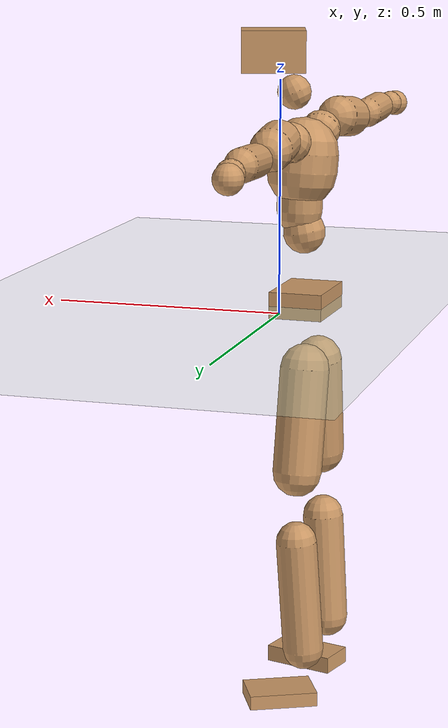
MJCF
<mujoco model="humanoid">
  <compiler coordinate="local" angle="radian"/>
  <default>
    <joint damping="0.0" armature="0.01" stiffness="0.0" limited="true"/>
    <geom conaffinity="1" condim="3" contype="7" margin="0.001" rgba="0.8 0.6 .4 1"/>
  </default>
  <asset>
    <texture type="skybox" builtin="gradient" rgb1=".4 .5 .6" rgb2="0 0 0" width="100" height="100"/>
    <texture builtin="flat" height="1278" mark="cross" markrgb="1 1 1" name="texgeom" random="0.01" rgb1="0.8 0.6 0.4" rgb2="0.8 0.6 0.4" type="cube" width="127"/>
    <texture builtin="checker" height="100" name="texplane" rgb1="0 0 0" rgb2="0.8 0.8 0.8" type="2d" width="100"/>
    <material name="MatPlane" reflectance="0.5" shininess="1" specular="1" texrepeat="60 60" texture="texplane"/>
    <material name="geom" texture="texgeom" texuniform="true"/>
  </asset>
  <worldbody>
    <light cutoff="100" diffuse="1 1 1" dir="-0 0 -1.3" directional="true" exponent="1" pos="0 0 1.3" specular=".1 .1 .1"/>
    <geom conaffinity="1" condim="3" name="floor" pos="0 0 0" rgba="0.8 0.9 0.8 1" size="100 100 .2" type="plane" material="MatPlane"/>
    <body name="Pelvis" pos="-0.003 -0.1662 0.0079">
      <freejoint name="Pelvis"/>
      <geom type="box" contype="1" conaffinity="1" density="5359.374495" pos="-0.0126 0.0004 -0.0079" size="0.0593 0.0864 0.0293" quat="0.9999 0.0000 0.0000 -0.0141" name="Pelvis"/>
      <body name="L_Hip" pos="-0.0286 0.0453 -0.0663">
        <joint name="L_Hip_x" type="hinge" pos="0 0 0" axis="1 0 0" stiffness="1600" damping="160" armature="0.02" range="-180.0000 180.0000"/>
        <joint name="L_Hip_y" type="hinge" pos="0 0 0" axis="0 1 0" stiffness="1600" damping="160" armature="0.02" range="-180.0000 180.0000"/>
        <joint name="L_Hip_z" type="hinge" pos="0 0 0" axis="0 0 1" stiffness="1600" damping="160" armature="0.02" range="-180.0000 180.0000"/>
        <geom type="capsule" contype="1" conaffinity="1" density="2040.816327" size="0.0543" fromto="0.0025 0.0116 -0.0835 0.0095 0.0438 -0.3150" name="L_Hip"/>
        <body name="L_Knee" pos="0.012 0.0554 -0.3984">
          <joint name="L_Knee_x" type="hinge" pos="0 0 0" axis="1 0 0" stiffness="1600" damping="160" armature="0.02" range="-180.0000 180.0000"/>
          <joint name="L_Knee_y" type="hinge" pos="0 0 0" axis="0 1 0" stiffness="1600" damping="160" armature="0.02" range="-180.0000 180.0000"/>
          <joint name="L_Knee_z" type="hinge" pos="0 0 0" axis="0 0 1" stiffness="1600" damping="160" armature="0.02" range="-180.0000 180.0000"/>
          <geom type="capsule" contype="1" conaffinity="1" density="1234.567901" size="0.0456" fromto="-0.0049 -0.0015 -0.0754 -0.0213 -0.0067 -0.3291" name="L_Knee"/>
          <body name="L_Ankle" pos="-0.0262 -0.0082 -0.4046">
            <joint name="L_Ankle_x" type="hinge" pos="0 0 0" axis="1 0 0" stiffness="1600" damping="160" armature="0.02" range="-180.0000 180.0000"/>
            <joint name="L_Ankle_y" type="hinge" pos="0 0 0" axis="0 1 0" stiffness="1600" damping="160" armature="0.02" range="-180.0000 180.0000"/>
            <joint name="L_Ankle_z" type="hinge" pos="0 0 0" axis="0 0 1" stiffness="1600" damping="160" armature="0.02" range="-180.0000 180.0000"/>
            <geom type="box" contype="1" conaffinity="1" density="1000.000057" pos="0.0524 0.0255 -0.0281" size="0.0763 0.0515 0.0159" quat="0.9744 0.0000 0.0000 0.2247" name="L_Ankle"/>
            <body name="L_Toe" pos="0.1049 0.0511 -0.0563">
              <joint name="L_Toe_x" type="hinge" pos="0 0 0" axis="1 0 0" stiffness="1000" damping="100" armature="0.02" range="-180.0000 180.0000"/>
              <joint name="L_Toe_y" type="hinge" pos="0 0 0" axis="0 1 0" stiffness="1000" damping="100" armature="0.02" range="-180.0000 180.0000"/>
              <joint name="L_Toe_z" type="hinge" pos="0 0 0" axis="0 0 1" stiffness="1000" damping="100" armature="0.02" range="-180.0000 180.0000"/>
              <geom type="box" contype="1" conaffinity="1" density="7121091.920191" pos="0.0000 0.0000 0.0308" size="0.0009 0.0025 0.0009" quat="0.9736 0.0000 0.0000 0.2285" name="L_Toe"/>
            </body>
          </body>
        </body>
      </body>
      <body name="R_Hip" pos="-0.0275 -0.0471 -0.0722">
        <joint name="R_Hip_x" type="hinge" pos="0 0 0" axis="1 0 0" stiffness="1600" damping="160" armature="0.02" range="-180.0000 180.0000"/>
        <joint name="R_Hip_y" type="hinge" pos="0 0 0" axis="0 1 0" stiffness="1600" damping="160" armature="0.02" range="-180.0000 180.0000"/>
        <joint name="R_Hip_z" type="hinge" pos="0 0 0" axis="0 0 1" stiffness="1600" damping="160" armature="0.02" range="-180.0000 180.0000"/>
        <geom type="capsule" contype="1" conaffinity="1" density="2040.816327" size="0.0527" fromto="-0.0004 -0.0105 -0.0820 -0.0016 -0.0389 -0.3030" name="R_Hip"/>
        <body name="R_Knee" pos="-0.002 -0.0494 -0.385">
          <joint name="R_Knee_x" type="hinge" pos="0 0 0" axis="1 0 0" stiffness="1600" damping="160" armature="0.02" range="-180.0000 180.0000"/>
          <joint name="R_Knee_y" type="hinge" pos="0 0 0" axis="0 1 0" stiffness="1600" damping="160" armature="0.02" range="-180.0000 180.0000"/>
          <joint name="R_Knee_z" type="hinge" pos="0 0 0" axis="0 0 1" stiffness="1600" damping="160" armature="0.02" range="-180.0000 180.0000"/>
          <geom type="capsule" contype="1" conaffinity="1" density="1234.567901" size="0.0464" fromto="-0.0048 0.0028 -0.0762 -0.0199 0.0118 -0.3192" name="R_Knee"/>
          <body name="R_Ankle" pos="-0.0247 0.0146 -0.3953">
            <joint name="R_Ankle_x" type="hinge" pos="0 0 0" axis="1 0 0" stiffness="1600" damping="160" armature="0.02" range="-180.0000 180.0000"/>
            <joint name="R_Ankle_y" type="hinge" pos="0 0 0" axis="0 1 0" stiffness="1600" damping="160" armature="0.02" range="-180.0000 180.0000"/>
            <joint name="R_Ankle_z" type="hinge" pos="0 0 0" axis="0 0 1" stiffness="1600" damping="160" armature="0.02" range="-180.0000 180.0000"/>
            <geom type="box" contype="1" conaffinity="1" density="1000.000001" pos="0.0564 -0.0152 -0.0296" size="0.0806 0.0436 0.0186" quat="0.9913 0.0000 0.0000 -0.1315" name="R_Ankle"/>
            <body name="R_Toe" pos="0.1127 -0.0304 -0.0592">
              <joint name="R_Toe_x" type="hinge" pos="0 0 0" axis="1 0 0" stiffness="1000" damping="100" armature="0.02" range="-180.0000 180.0000"/>
              <joint name="R_Toe_y" type="hinge" pos="0 0 0" axis="0 1 0" stiffness="1000" damping="100" armature="0.02" range="-180.0000 180.0000"/>
              <joint name="R_Toe_z" type="hinge" pos="0 0 0" axis="0 0 1" stiffness="1000" damping="100" armature="0.02" range="-180.0000 180.0000"/>
              <geom type="box" contype="1" conaffinity="1" density="8785586.535581" pos="0.0000 0.0000 0.0326" size="0.0008 0.0021 0.0011" quat="0.9926 0.0000 0.0000 -0.1212" name="R_Toe"/>
            </body>
          </body>
        </body>
      </body>
      <body name="Torso" pos="-0.0197 0.0039 0.0908">
        <joint name="Torso_x" type="hinge" pos="0 0 0" axis="1 0 0" stiffness="2000" damping="200" armature="0.02" range="-180.0000 180.0000"/>
        <joint name="Torso_y" type="hinge" pos="0 0 0" axis="0 1 0" stiffness="2000" damping="200" armature="0.02" range="-180.0000 180.0000"/>
        <joint name="Torso_z" type="hinge" pos="0 0 0" axis="0 0 1" stiffness="2000" damping="200" armature="0.02" range="-180.0000 180.0000"/>
        <geom type="capsule" contype="1" conaffinity="1" density="2040.816327" size="0.0469" fromto="0.0108 0.0007 0.0533 0.0112 0.0007 0.0553" name="Torso"/>
        <body name="Spine" pos="0.0219 0.0014 0.1087">
          <joint name="Spine_x" type="hinge" pos="0 0 0" axis="1 0 0" stiffness="2000" damping="200" armature="0.02" range="-180.0000 180.0000"/>
          <joint name="Spine_y" type="hinge" pos="0 0 0" axis="0 1 0" stiffness="2000" damping="200" armature="0.02" range="-180.0000 180.0000"/>
          <joint name="Spine_z" type="hinge" pos="0 0 0" axis="0 0 1" stiffness="2000" damping="200" armature="0.02" range="-180.0000 180.0000"/>
          <geom type="capsule" contype="1" conaffinity="1" density="2040.816327" size="0.0508" fromto="-0.0020 -0.0001 0.0508 0.0003 0.0000 -0.0082" name="Spine"/>
          <body name="Chest" pos="-0.0017 0 0.0426">
            <joint name="Chest_x" type="hinge" pos="0 0 0" axis="1 0 0" stiffness="2000" damping="200" armature="0.02" range="-180.0000 180.0000"/>
            <joint name="Chest_y" type="hinge" pos="0 0 0" axis="0 1 0" stiffness="2000" damping="200" armature="0.02" range="-180.0000 180.0000"/>
            <joint name="Chest_z" type="hinge" pos="0 0 0" axis="0 0 1" stiffness="2000" damping="200" armature="0.02" range="-180.0000 180.0000"/>
            <geom type="capsule" contype="1" conaffinity="1" density="2040.816327" size="0.0777" fromto="-0.0044 -0.0056 0.0773 -0.0020 -0.0026 0.0360" name="Chest"/>
            <body name="Neck" pos="-0.0043 -0.0135 0.1637">
              <joint name="Neck_x" type="hinge" pos="0 0 0" axis="1 0 0" stiffness="1000" damping="100" armature="0.02" range="-180.0000 180.0000"/>
              <joint name="Neck_y" type="hinge" pos="0 0 0" axis="0 1 0" stiffness="1000" damping="100" armature="0.02" range="-180.0000 180.0000"/>
              <joint name="Neck_z" type="hinge" pos="0 0 0" axis="0 0 1" stiffness="1000" damping="100" armature="0.02" range="-180.0000 180.0000"/>
              <geom type="capsule" contype="1" conaffinity="1" density="1000" size="0.0371" fromto="0.0214 0.0056 0.0433 0.0222 0.0058 0.0451" name="Neck"/>
              <body name="Head" pos="0.0436 0.0114 0.0885">
                <joint name="Head_x" type="hinge" pos="0 0 0" axis="1 0 0" stiffness="1000" damping="100" armature="0.02" range="-180.0000 180.0000"/>
                <joint name="Head_y" type="hinge" pos="0 0 0" axis="0 1 0" stiffness="1000" damping="100" armature="0.02" range="-180.0000 180.0000"/>
                <joint name="Head_z" type="hinge" pos="0 0 0" axis="0 0 1" stiffness="1000" damping="100" armature="0.02" range="-180.0000 180.0000"/>
                <geom type="box" contype="1" conaffinity="1" density="2250.000266" pos="0.0228 0.0067 0.0452" size="0.0695 0.0546 0.0455" quat="0.9898 0.0000 0.0000 0.1425" name="Head"/>
              </body>
            </body>
            <body name="L_Thorax" pos="-0.0039 0.0636 0.0888">
              <joint name="L_Thorax_x" type="hinge" pos="0 0 0" axis="1 0 0" stiffness="1000" damping="100" armature="0.02" range="-180.0000 180.0000"/>
              <joint name="L_Thorax_y" type="hinge" pos="0 0 0" axis="0 1 0" stiffness="1000" damping="100" armature="0.02" range="-180.0000 180.0000"/>
              <joint name="L_Thorax_z" type="hinge" pos="0 0 0" axis="0 0 1" stiffness="1000" damping="100" armature="0.02" range="-180.0000 180.0000"/>
              <geom type="capsule" contype="1" conaffinity="1" density="1000" size="0.0436" fromto="-0.0048 0.0537 0.0243 -0.0050 0.0555 0.0251" name="L_Thorax"/>
              <body name="L_Shoulder" pos="-0.0098 0.1091 0.0493">
                <joint name="L_Shoulder_x" type="hinge" pos="0 0 0" axis="1 0 0" stiffness="1000" damping="100" armature="0.02" range="-720.0000 720.0000"/>
                <joint name="L_Shoulder_y" type="hinge" pos="0 0 0" axis="0 1 0" stiffness="1000" damping="100" armature="0.02" range="-720.0000 720.0000"/>
                <joint name="L_Shoulder_z" type="hinge" pos="0 0 0" axis="0 0 1" stiffness="1000" damping="100" armature="0.02" range="-720.0000 720.0000"/>
                <geom type="capsule" contype="1" conaffinity="1" density="1000" size="0.0451" fromto="-0.0054 0.0747 -0.0064 -0.0117 0.1617 -0.0138" name="L_Shoulder"/>
                <body name="L_Elbow" pos="-0.017 0.2364 -0.0202">
                  <joint name="L_Elbow_x" type="hinge" pos="0 0 0" axis="1 0 0" stiffness="1000" damping="100" armature="0.02" range="-720.0000 720.0000"/>
                  <joint name="L_Elbow_y" type="hinge" pos="0 0 0" axis="0 1 0" stiffness="1000" damping="100" armature="0.02" range="-720.0000 720.0000"/>
                  <joint name="L_Elbow_z" type="hinge" pos="0 0 0" axis="0 0 1" stiffness="1000" damping="100" armature="0.02" range="-720.0000 720.0000"/>
                  <geom type="capsule" contype="1" conaffinity="1" density="1000" size="0.0344" fromto="-0.0023 0.0643 0.0030 -0.0065 0.1784 0.0082" name="L_Elbow"/>
                  <body name="L_Wrist" pos="-0.0088 0.2427 0.0112">
                    <joint name="L_Wrist_x" type="hinge" pos="0 0 0" axis="1 0 0" stiffness="600" damping="60" armature="0.02" range="-180.0000 180.0000"/>
                    <joint name="L_Wrist_y" type="hinge" pos="0 0 0" axis="0 1 0" stiffness="600" damping="60" armature="0.02" range="-180.0000 180.0000"/>
                    <joint name="L_Wrist_z" type="hinge" pos="0 0 0" axis="0 0 1" stiffness="600" damping="60" armature="0.02" range="-180.0000 180.0000"/>
                    <geom type="capsule" contype="1" conaffinity="1" density="1000" size="0.0285" fromto="-0.0068 0.0366 -0.0047 -0.0071 0.0385 -0.0050" name="L_Wrist"/>
                    <body name="L_Hand" pos="-0.0139 0.0751 -0.0097">
                      <joint name="L_Hand_x" type="hinge" pos="0 0 0" axis="1 0 0" stiffness="600" damping="60" armature="0.02" range="-180.0000 180.0000"/>
                      <joint name="L_Hand_y" type="hinge" pos="0 0 0" axis="0 1 0" stiffness="600" damping="60" armature="0.02" range="-180.0000 180.0000"/>
                      <joint name="L_Hand_z" type="hinge" pos="0 0 0" axis="0 0 1" stiffness="600" damping="60" armature="0.02" range="-180.0000 180.0000"/>
                      <geom type="sphere" contype="1" conaffinity="1" density="1000" size="0.0306" pos="0.0000 0.0000 0.0000" name="L_Hand"/>
                    </body>
                  </body>
                </body>
              </body>
            </body>
            <body name="R_Thorax" pos="-0.011 -0.0746 0.0875">
              <joint name="R_Thorax_x" type="hinge" pos="0 0 0" axis="1 0 0" stiffness="1000" damping="100" armature="0.02" range="-180.0000 180.0000"/>
              <joint name="R_Thorax_y" type="hinge" pos="0 0 0" axis="0 1 0" stiffness="1000" damping="100" armature="0.02" range="-180.0000 180.0000"/>
              <joint name="R_Thorax_z" type="hinge" pos="0 0 0" axis="0 0 1" stiffness="1000" damping="100" armature="0.02" range="-180.0000 180.0000"/>
              <geom type="capsule" contype="1" conaffinity="1" density="1000" size="0.0442" fromto="-0.0016 -0.0490 0.0254 -0.0016 -0.0508 0.0263" name="R_Thorax"/>
              <body name="R_Shoulder" pos="-0.0032 -0.0998 0.0517">
                <joint name="R_Shoulder_x" type="hinge" pos="0 0 0" axis="1 0 0" stiffness="1000" damping="100" armature="0.02" range="-720.0000 720.0000"/>
                <joint name="R_Shoulder_y" type="hinge" pos="0 0 0" axis="0 1 0" stiffness="1000" damping="100" armature="0.02" range="-720.0000 720.0000"/>
                <joint name="R_Shoulder_z" type="hinge" pos="0 0 0" axis="0 0 1" stiffness="1000" damping="100" armature="0.02" range="-720.0000 720.0000"/>
                <geom type="capsule" contype="1" conaffinity="1" density="1000" size="0.0463" fromto="-0.0071 -0.0756 -0.0080 -0.0152 -0.1627 -0.0172" name="R_Shoulder"/>
                <body name="R_Elbow" pos="-0.0223 -0.2382 -0.0252">
                  <joint name="R_Elbow_x" type="hinge" pos="0 0 0" axis="1 0 0" stiffness="1000" damping="100" armature="0.02" range="-720.0000 720.0000"/>
                  <joint name="R_Elbow_y" type="hinge" pos="0 0 0" axis="0 1 0" stiffness="1000" damping="100" armature="0.02" range="-720.0000 720.0000"/>
                  <joint name="R_Elbow_z" type="hinge" pos="0 0 0" axis="0 0 1" stiffness="1000" damping="100" armature="0.02" range="-720.0000 720.0000"/>
                  <geom type="capsule" contype="1" conaffinity="1" density="1000" size="0.0346" fromto="-0.0009 -0.0646 0.0019 -0.0026 -0.1841 0.0055" name="R_Elbow"/>
                  <body name="R_Wrist" pos="-0.0035 -0.2487 0.0074">
                    <joint name="R_Wrist_x" type="hinge" pos="0 0 0" axis="1 0 0" stiffness="600" damping="60" armature="0.02" range="-180.0000 180.0000"/>
                    <joint name="R_Wrist_y" type="hinge" pos="0 0 0" axis="0 1 0" stiffness="600" damping="60" armature="0.02" range="-180.0000 180.0000"/>
                    <joint name="R_Wrist_z" type="hinge" pos="0 0 0" axis="0 0 1" stiffness="600" damping="60" armature="0.02" range="-180.0000 180.0000"/>
                    <geom type="capsule" contype="1" conaffinity="1" density="1000" size="0.0285" fromto="-0.0047 -0.0367 -0.0036 -0.0049 -0.0387 -0.0038" name="R_Wrist"/>
                    <body name="R_Hand" pos="-0.0096 -0.0754 -0.0073">
                      <joint name="R_Hand_x" type="hinge" pos="0 0 0" axis="1 0 0" stiffness="600" damping="60" armature="0.02" range="-180.0000 180.0000"/>
                      <joint name="R_Hand_y" type="hinge" pos="0 0 0" axis="0 1 0" stiffness="600" damping="60" armature="0.02" range="-180.0000 180.0000"/>
                      <joint name="R_Hand_z" type="hinge" pos="0 0 0" axis="0 0 1" stiffness="600" damping="60" armature="0.02" range="-180.0000 180.0000"/>
                      <geom type="sphere" contype="1" conaffinity="1" density="1000" size="0.0304" pos="0.0000 0.0000 0.0000" name="R_Hand"/>
                    </body>
                  </body>
                </body>
              </body>
            </body>
          </body>
        </body>
      </body>
    </body>
  </worldbody>
  <actuator>
    <motor name="L_Hip_x" joint="L_Hip_x" gear="500"/>
    <motor name="L_Hip_y" joint="L_Hip_y" gear="500"/>
    <motor name="L_Hip_z" joint="L_Hip_z" gear="500"/>
    <motor name="L_Knee_x" joint="L_Knee_x" gear="500"/>
    <motor name="L_Knee_y" joint="L_Knee_y" gear="500"/>
    <motor name="L_Knee_z" joint="L_Knee_z" gear="500"/>
    <motor name="L_Ankle_x" joint="L_Ankle_x" gear="500"/>
    <motor name="L_Ankle_y" joint="L_Ankle_y" gear="500"/>
    <motor name="L_Ankle_z" joint="L_Ankle_z" gear="500"/>
    <motor name="L_Toe_x" joint="L_Toe_x" gear="500"/>
    <motor name="L_Toe_y" joint="L_Toe_y" gear="500"/>
    <motor name="L_Toe_z" joint="L_Toe_z" gear="500"/>
    <motor name="R_Hip_x" joint="R_Hip_x" gear="500"/>
    <motor name="R_Hip_y" joint="R_Hip_y" gear="500"/>
    <motor name="R_Hip_z" joint="R_Hip_z" gear="500"/>
    <motor name="R_Knee_x" joint="R_Knee_x" gear="500"/>
    <motor name="R_Knee_y" joint="R_Knee_y" gear="500"/>
    <motor name="R_Knee_z" joint="R_Knee_z" gear="500"/>
    <motor name="R_Ankle_x" joint="R_Ankle_x" gear="500"/>
    <motor name="R_Ankle_y" joint="R_Ankle_y" gear="500"/>
    <motor name="R_Ankle_z" joint="R_Ankle_z" gear="500"/>
    <motor name="R_Toe_x" joint="R_Toe_x" gear="500"/>
    <motor name="R_Toe_y" joint="R_Toe_y" gear="500"/>
    <motor name="R_Toe_z" joint="R_Toe_z" gear="500"/>
    <motor name="Torso_x" joint="Torso_x" gear="500"/>
    <motor name="Torso_y" joint="Torso_y" gear="500"/>
    <motor name="Torso_z" joint="Torso_z" gear="500"/>
    <motor name="Spine_x" joint="Spine_x" gear="500"/>
    <motor name="Spine_y" joint="Spine_y" gear="500"/>
    <motor name="Spine_z" joint="Spine_z" gear="500"/>
    <motor name="Chest_x" joint="Chest_x" gear="500"/>
    <motor name="Chest_y" joint="Chest_y" gear="500"/>
    <motor name="Chest_z" joint="Chest_z" gear="500"/>
    <motor name="Neck_x" joint="Neck_x" gear="500"/>
    <motor name="Neck_y" joint="Neck_y" gear="500"/>
    <motor name="Neck_z" joint="Neck_z" gear="500"/>
    <motor name="Head_x" joint="Head_x" gear="500"/>
    <motor name="Head_y" joint="Head_y" gear="500"/>
    <motor name="Head_z" joint="Head_z" gear="500"/>
    <motor name="L_Thorax_x" joint="L_Thorax_x" gear="500"/>
    <motor name="L_Thorax_y" joint="L_Thorax_y" gear="500"/>
    <motor name="L_Thorax_z" joint="L_Thorax_z" gear="500"/>
    <motor name="L_Shoulder_x" joint="L_Shoulder_x" gear="500"/>
    <motor name="L_Shoulder_y" joint="L_Shoulder_y" gear="500"/>
    <motor name="L_Shoulder_z" joint="L_Shoulder_z" gear="500"/>
    <motor name="L_Elbow_x" joint="L_Elbow_x" gear="500"/>
    <motor name="L_Elbow_y" joint="L_Elbow_y" gear="500"/>
    <motor name="L_Elbow_z" joint="L_Elbow_z" gear="500"/>
    <motor name="L_Wrist_x" joint="L_Wrist_x" gear="500"/>
    <motor name="L_Wrist_y" joint="L_Wrist_y" gear="500"/>
    <motor name="L_Wrist_z" joint="L_Wrist_z" gear="500"/>
    <motor name="L_Hand_x" joint="L_Hand_x" gear="500"/>
    <motor name="L_Hand_y" joint="L_Hand_y" gear="500"/>
    <motor name="L_Hand_z" joint="L_Hand_z" gear="500"/>
    <motor name="R_Thorax_x" joint="R_Thorax_x" gear="500"/>
    <motor name="R_Thorax_y" joint="R_Thorax_y" gear="500"/>
    <motor name="R_Thorax_z" joint="R_Thorax_z" gear="500"/>
    <motor name="R_Shoulder_x" joint="R_Shoulder_x" gear="500"/>
    <motor name="R_Shoulder_y" joint="R_Shoulder_y" gear="500"/>
    <motor name="R_Shoulder_z" joint="R_Shoulder_z" gear="500"/>
    <motor name="R_Elbow_x" joint="R_Elbow_x" gear="500"/>
    <motor name="R_Elbow_y" joint="R_Elbow_y" gear="500"/>
    <motor name="R_Elbow_z" joint="R_Elbow_z" gear="500"/>
    <motor name="R_Wrist_x" joint="R_Wrist_x" gear="500"/>
    <motor name="R_Wrist_y" joint="R_Wrist_y" gear="500"/>
    <motor name="R_Wrist_z" joint="R_Wrist_z" gear="500"/>
    <motor name="R_Hand_x" joint="R_Hand_x" gear="500"/>
    <motor name="R_Hand_y" joint="R_Hand_y" gear="500"/>
    <motor name="R_Hand_z" joint="R_Hand_z" gear="500"/>
  </actuator>
  <contact>
    <exclude body1="Torso" body2="Chest"/>
    <exclude body1="Head" body2="Chest"/>
    <exclude body1="R_Knee" body2="R_Toe"/>
    <exclude body1="R_Knee" body2="L_Ankle"/>
    <exclude body1="R_Knee" body2="L_Toe"/>
    <exclude body1="L_Knee" body2="L_Toe"/>
    <exclude body1="L_Knee" body2="R_Ankle"/>
    <exclude body1="L_Knee" body2="R_Toe"/>
    <exclude body1="L_Shoulder" body2="Chest"/>
    <exclude body1="R_Shoulder" body2="Chest"/>
  </contact>
  <sensor/>
  <size njmax="700" nconmax="700"/>
</mujoco>
